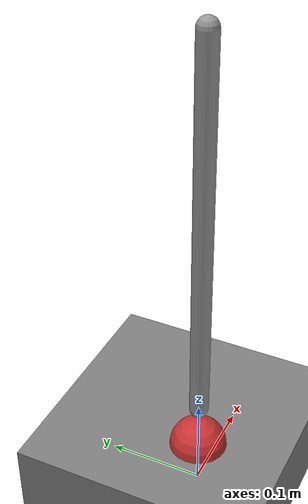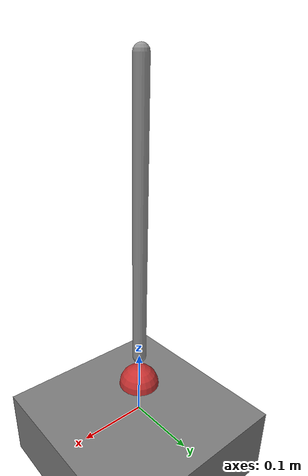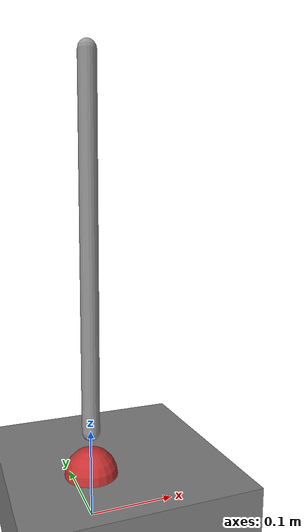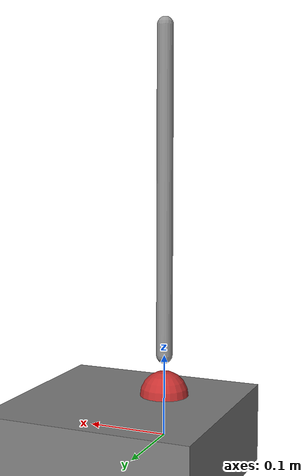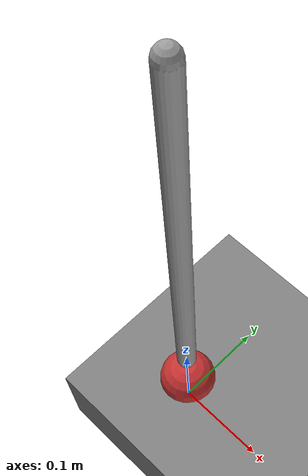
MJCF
<mujoco model="contact_site_frame_test">
  <compiler angle="radian"/>
  <option timestep="0.002" gravity="0 0 -9.81"/>

  <worldbody>
    <body name="arm_base" pos="0 0 0.50">
      <joint name="j1" type="hinge" axis="0 1 0" range="-3.14 3.14" damping="0.5"/>
      <inertial pos="0 0 -0.20" mass="0.5" diaginertia="0.005 0.005 0.005"/>
      <geom type="capsule" fromto="0 0 0 0 0 -0.40" size="0.01"
            rgba="0.6 0.6 0.6 1" contype="0" conaffinity="0"/>
      <body name="tip_link" pos="0 0 -0.45">
        <inertial pos="0 0 0" mass="0.05" diaginertia="0.0001 0.0001 0.0001"/>
        <geom name="tip_a_contact_geom" type="sphere" size="0.03"
              rgba="0.8 0.2 0.2 1"/>
        <!-- reference_frame: "body" resolves through this one (identity). -->
        <site name="tip_a_ft_site" pos="0 0 0" size="0.003" group="3"/>
        <!-- reference_frame: "site" resolves through this one (rotated). -->
        <site name="tip_a_bracket" pos="0 0 0" quat="0.5 -0.5 -0.5 0.5"
              size="0.003" group="3"/>
      </body>
    </body>

    <body name="ground">
      <geom name="ground_box" type="box" size="2 2 0.05" pos="0 0 0"/>
    </body>
  </worldbody>

  <actuator>
    <position name="m1" joint="j1" kp="50" kv="5" ctrlrange="-3.14 3.14"/>
  </actuator>

  <sensor>
    <contact name="tip_a_contact"
             geom1="tip_a_contact_geom"
             num="1"
             data="found force torque dist pos normal tangent"
             reduce="netforce"/>
  </sensor>
</mujoco>
